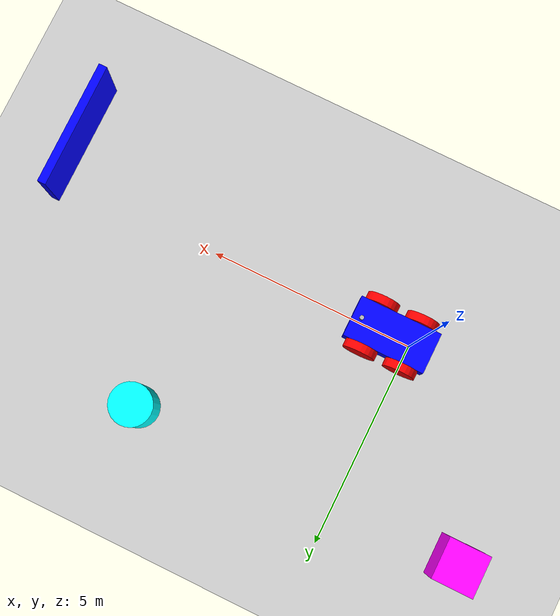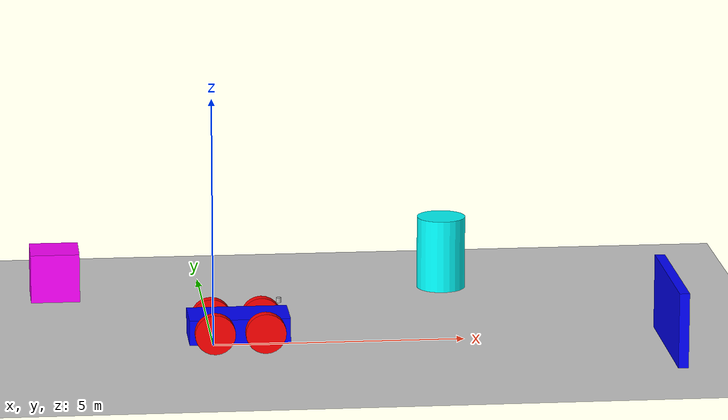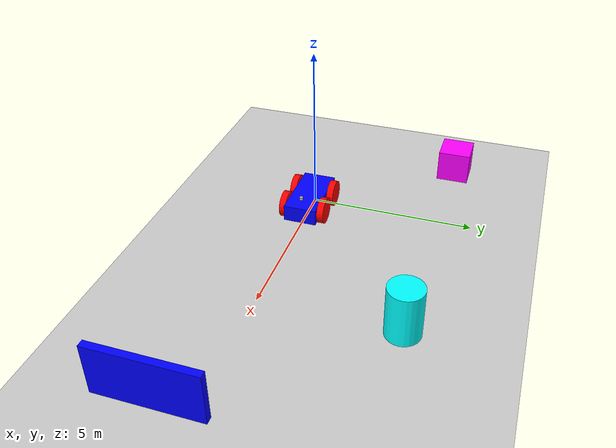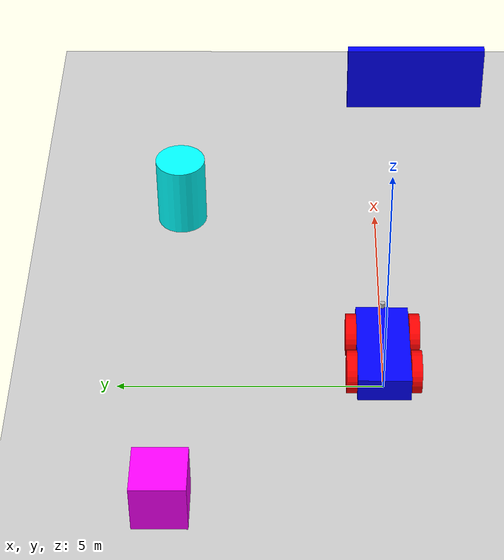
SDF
<?xml version="1.0" ?>
<sdf version="1.10">
    <world name="car_world">
        <physics name="1ms" type="ignored">
            <max_step_size>0.001</max_step_size>
            <real_time_factor>1.0</real_time_factor>
        </physics>
        <plugin
            filename="gz-sim-physics-system"
            name="gz::sim::systems::Physics">
        </plugin>
        <plugin
            filename="gz-sim-user-commands-system"
            name="gz::sim::systems::UserCommands">
        </plugin>
        <plugin
            filename="gz-sim-scene-broadcaster-system"
            name="gz::sim::systems::SceneBroadcaster">
        </plugin>

        <light type="directional" name="sun">
            <cast_shadows>true</cast_shadows>
            <pose>0 0 10 0 0 0</pose>
            <diffuse>0.8 0.8 0.8 1</diffuse>
            <specular>0.2 0.2 0.2 1</specular>
            <attenuation>
                <range>1000</range>
                <constant>0.9</constant>
                <linear>0.01</linear>
                <quadratic>0.001</quadratic>
            </attenuation>
            <direction>-0.5 0.1 -0.9</direction>
        </light>

        <model name="ground_plane">
            <static>true</static>
            <link name="link">
                <collision name="collision">
                <geometry>
                    <plane>
                    <normal>0 0 1</normal>
                    </plane>
                </geometry>
                </collision>
                <visual name="visual">
                <geometry>
                    <plane>
                    <normal>0 0 1</normal>
                    <size>100 100</size>
                    </plane>
                </geometry>
                <material>
                    <ambient>0.8 0.8 0.8 1</ambient>
                    <diffuse>0.8 0.8 0.8 1</diffuse>
                    <specular>0.8 0.8 0.8 1</specular>
                </material>
                </visual>
            </link>
        </model>
        <model name='vehicle_blue' canonical_link='chassis'>
            <pose relative_to='world'>0 0 0 0 0 0</pose>

            <link name='chassis'>
                <pose relative_to='__model__'>0.5 0 0.4 0 0 0</pose>
                <inertial> <!--inertial properties of the link mass, inertia matix-->
                    <mass>1.14395</mass>
                    <inertia>
                        <ixx>0.095329</ixx>
                        <ixy>0</ixy>
                        <ixz>0</ixz>
                        <iyy>0.381317</iyy>
                        <iyz>0</iyz>
                        <izz>0.4766 46</izz>
                    </inertia>
                </inertial>
                <visual name='visual'>
                    <geometry>
                        <box>
                            <size>2.0 1.0 0.5</size>
                        </box>
                    </geometry>
                    <!--let's add color to our link-->
                    <material>
                        <ambient>0.0 0.0 1.0 1</ambient>
                        <diffuse>0.0 0.0 1.0 1</diffuse>
                        <specular>0.0 0.0 1.0 1</specular>
                    </material>
                </visual>
                <collision name='collision'>
                    <geometry>
                        <box>
                            <size>2.0 1.0 0.5</size>
                        </box>
                    </geometry>
                </collision>
            </link>
            <link name='left_wheel'>
                <pose relative_to="chassis">-0.5 0.6 0 -1.5707 0 0</pose>
                <inertial>
                    <mass>1</mass>
                    <inertia>
                        <ixx>0.043333</ixx>
                        <ixy>0</ixy>
                        <ixz>0</ixz>
                        <iyy>0.043333</iyy>
                        <iyz>0</iyz>
                        <izz>0.08</izz>
                    </inertia>
                </inertial>
                    <visual name='visual'>
                        <geometry>
                            <cylinder>
                                <radius>0.4</radius>
                                <length>0.2</length>
                            </cylinder>
                        </geometry>
                        <material>
                            <ambient>1.0 0.0 0.0 1</ambient>
                            <diffuse>1.0 0.0 0.0 1</diffuse>
                            <specular>1.0 0.0 0.0 1</specular>
                        </material>
                    </visual>
                    <collision name='collision'>
                        <geometry>
                            <cylinder>
                                <radius>0.4</radius>
                                <length>0.2</length>
                            </cylinder>
                        </geometry>
                    </collision>
                </link>

                <!--The same as left wheel but with different position-->
                <link name='right_wheel'>
                    <pose relative_to="chassis">-0.5 -0.6 0 -1.5707 0 0</pose> <!--angles are in radian-->
                    <inertial>
                        <mass>1</mass>
                        <inertia>
                            <ixx>0.043333</ixx>
                            <ixy>0</ixy>
                            <ixz>0</ixz>
                            <iyy>0.043333</iyy>
                            <iyz>0</iyz>
                            <izz>0.08</izz>
                        </inertia>
                    </inertial>
                    <visual name='visual'>
                        <geometry>
                            <cylinder>
                                <radius>0.4</radius>
                                <length>0.2</length>
                            </cylinder>
                        </geometry>
                        <material>
                            <ambient>1.0 0.0 0.0 1</ambient>
                            <diffuse>1.0 0.0 0.0 1</diffuse>
                            <specular>1.0 0.0 0.0 1</specular>
                        </material>
                    </visual>
                    <collision name='collision'>
                        <geometry>
                            <cylinder>
                                <radius>0.4</radius>
                                <length>0.2</length>
                            </cylinder>
                        </geometry>
                    </collision>
                </link>

                <link name='front_left_wheel'>
                <pose relative_to="chassis">0.5 0.6 0 -1.5707 0 0</pose>
                <inertial>
                    <mass>1</mass>
                    <inertia>
                        <ixx>0.043333</ixx>
                        <ixy>0</ixy>
                        <ixz>0</ixz>
                        <iyy>0.043333</iyy>
                        <iyz>0</iyz>
                        <izz>0.08</izz>
                    </inertia>
                </inertial>
                    <visual name='visual'>
                        <geometry>
                            <cylinder>
                                <radius>0.4</radius>
                                <length>0.2</length>
                            </cylinder>
                        </geometry>
                        <material>
                            <ambient>1.0 0.0 0.0 1</ambient>
                            <diffuse>1.0 0.0 0.0 1</diffuse>
                            <specular>1.0 0.0 0.0 1</specular>
                        </material>
                    </visual>
                    <collision name='collision'>
                        <geometry>
                            <cylinder>
                                <radius>0.4</radius>
                                <length>0.2</length>
                            </cylinder>
                        </geometry>
                    </collision>
                </link>

                <!--The same as left wheel but with different position-->
                <link name='front_right_wheel'>
                    <pose relative_to="chassis">0.5 -0.6 0 -1.5707 0 0</pose> <!--angles are in radian-->
                    <inertial>
                        <mass>1</mass>
                        <inertia>
                            <ixx>0.043333</ixx>
                            <ixy>0</ixy>
                            <ixz>0</ixz>
                            <iyy>0.043333</iyy>
                            <iyz>0</iyz>
                            <izz>0.08</izz>
                        </inertia>
                    </inertial>
                    <visual name='visual'>
                        <geometry>
                            <cylinder>
                                <radius>0.4</radius>
                                <length>0.2</length>
                            </cylinder>
                        </geometry>
                        <material>
                            <ambient>1.0 0.0 0.0 1</ambient>
                            <diffuse>1.0 0.0 0.0 1</diffuse>
                            <specular>1.0 0.0 0.0 1</specular>
                        </material>
                    </visual>
                    <collision name='collision'>
                        <geometry>
                            <cylinder>
                                <radius>0.4</radius>
                                <length>0.2</length>
                            </cylinder>
                        </geometry>
                    </collision>
                </link>

                <joint name='left_wheel_joint' type='revolute'>
                    <pose relative_to='left_wheel'/>
                    <parent>chassis</parent>
                    <child>left_wheel</child>
                    <axis>
                    <xyz expressed_in='__model__'>0 1 0</xyz> <!--can be defined as any frame or even arbitrary frames-->
                    <limit>
                        <lower>-1.79769e+308</lower>    <!--negative infinity-->
                        <upper>1.79769e+308</upper>     <!--positive infinity-->
                    </limit>
                </axis>
            </joint>

            <joint name='right_wheel_joint' type='revolute'>
                    <pose relative_to='right_wheel'/>
                    <parent>chassis</parent>
                    <child>right_wheel</child>
                    <axis>
                    <xyz expressed_in='__model__'>0 1 0</xyz> <!--can be defined as any frame or even arbitrary frames-->
                    <limit>
                        <lower>-1.79769e+308</lower>    <!--negative infinity-->
                        <upper>1.79769e+308</upper>     <!--positive infinity-->
                    </limit>
                </axis>
            </joint>

            <joint name='front_left_wheel_joint' type='revolute'>
                    <pose relative_to='front_left_wheel'/>
                    <parent>chassis</parent>
                    <child>front_left_wheel</child>
                    <axis>
                    <xyz expressed_in='__model__'>0 1 0</xyz> <!--can be defined as any frame or even arbitrary frames-->
                    <limit>
                        <lower>-1.79769e+308</lower>    <!--negative infinity-->
                        <upper>1.79769e+308</upper>     <!--positive infinity-->
                    </limit>
                </axis>
            </joint>

            <joint name='front_right_wheel_joint' type='revolute'>
                    <pose relative_to='front_right_wheel'/>
                    <parent>chassis</parent>
                    <child>front_right_wheel</child>
                    <axis>
                    <xyz expressed_in='__model__'>0 1 0</xyz> <!--can be defined as any frame or even arbitrary frames-->
                    <limit>
                        <lower>-1.79769e+308</lower>    <!--negative infinity-->
                        <upper>1.79769e+308</upper>     <!--positive infinity-->
                    </limit>
                </axis>
            </joint>

            <plugin
                filename="gz-sim-diff-drive-system"
                name="gz::sim::systems::DiffDrive">
                <!-- For 4-wheel drive, list both front and rear joints -->
                <left_joint>front_left_wheel_joint</left_joint>
                <left_joint>left_wheel_joint</left_joint>
                <right_joint>front_right_wheel_joint</right_joint>
                <right_joint>right_wheel_joint</right_joint>
                <wheel_separation>1.2</wheel_separation>
                <wheel_radius>0.4</wheel_radius>
                <odom_publish_frequency>1</odom_publish_frequency>
                <topic>cmd_vel</topic>
            </plugin>
            <link name='lidar_link'>
                <pose relative_to='chassis'>0.8 0 0.5 0 0 0</pose>
                <inertial>
                    <mass>0.1</mass>
                    <inertia>
                        <ixx>0.000166667</ixx>
                        <iyy>0.000166667</iyy>
                        <izz>0.000166667</izz>
                    </inertia>
                </inertial>
                <visual name='visual'>
                    <geometry>
                        <cylinder>
                            <radius>0.05</radius>
                            <length>0.1</length>
                        </cylinder>
                    </geometry>
                </visual>
                <sensor name='gpu_lidar' type='gpu_lidar'>
                    <topic>lidar</topic>
                    <update_rate>10</update_rate>
                    <lidar>
                        <scan>
                            <horizontal>
                                <samples>640</samples>
                                <resolution>1</resolution>
                                <min_angle>-1.396263</min_angle>
                                <max_angle>1.396263</max_angle>
                            </horizontal>
                        </scan>
                        <range>
                            <min>0.08</min>
                            <max>10.0</max>
                        </range>
                    </lidar>
                    <visualize>true</visualize>
                </sensor>
            </link>

            <joint name='lidar_joint' type='fixed'>
                <parent>chassis</parent>
                <child>lidar_link</child>
            </joint>

        </model>
        <model name='wall'>
            <static>true</static>
            <pose relative_to='world'>9 -1 0.75 0 0 0</pose>
            <link name='link'>
                <visual name='visual'>
                    <geometry>
                        <box>
                            <size>0.2 3.0 1.5</size>
                        </box>
                    </geometry>
                    <material>
                        <ambient>0.0 0.0 1.0 1</ambient>
                        <diffuse>0.0 0.0 1.0 1</diffuse>
                        <specular>0.0 0.0 1.0 1</specular>
                    </material>
                </visual>

                <collision name='collision'>
                    <geometry>
                        <box>
                            <size>0.2 3.0 1.5</size>
                        </box>
                    </geometry>
                </collision>
            </link>
        </model>

        <model name='box_object'>
            <static>true</static>
            <pose relative_to='world'>-3 4 0.5 0 0 0</pose>
            <link name='link'>
                <visual name='visual'>
                    <geometry>
                        <box>
                            <size>1 1 1</size>
                        </box>
                    </geometry>
                    <material>
                        <ambient>1.0 0.0 1.0 1</ambient>
                        <diffuse>1.0 0.0 1.0 1</diffuse>
                        <specular>1.0 0.0 1.0 1</specular>
                    </material>
                </visual>

                <collision name='collision'>
                    <geometry>
                        <box>
                            <size>1 1 1</size>
                        </box>
                    </geometry>
                </collision>
            </link>
        </model>

        <model name='cylinder_object'>
            <static>true</static>
            <pose relative_to='world'>5 4 0.75 0 0 0</pose>
            <link name='link'>
                <visual name='visual'>
                    <geometry>
                        <cylinder>
                            <radius>0.5</radius>
                            <length>1.5</length>
                        </cylinder>
                    </geometry>
                    <material>
                        <ambient>0.0 1.0 1.0 1</ambient>
                        <diffuse>0.0 1.0 1.0 1</diffuse>
                        <specular>0.0 1.0 1.0 1</specular>
                    </material>
                </visual>

                <collision name='collision'>
                    <geometry>
                        <cylinder>
                            <radius>0.5</radius>
                            <length>1.5</length>
                        </cylinder>
                    </geometry>
                </collision>
            </link>
        </model>

        <!-- Moving Forward-->
        <plugin filename="gz-sim-triggered-publisher-system"
                name="gz::sim::systems::TriggeredPublisher">
            <input type="gz.msgs.Int32" topic="/keyboard/keypress">
                <match field="data">16777235</match>
            </input>
            <output type="gz.msgs.Twist" topic="/cmd_vel">
                linear: {x: 0.5}, angular: {z: 0.0}
            </output>
        </plugin>

        <!-- Moving Backward-->
        <plugin filename="gz-sim-triggered-publisher-system"
                name="gz::sim::systems::TriggeredPublisher">
            <input type="gz.msgs.Int32" topic="/keyboard/keypress">
                <match field="data">16777237</match>
            </input>
            <output type="gz.msgs.Twist" topic="/cmd_vel">
                linear: {x: -0.5}, angular: {z: 0.0}
            </output>
        </plugin>

        <!-- Moving Left-->
        <plugin filename="gz-sim-triggered-publisher-system"
                name="gz::sim::systems::TriggeredPublisher">
            <input type="gz.msgs.Int32" topic="/keyboard/keypress">
                <match field="data">16777234</match>
            </input>
            <output type="gz.msgs.Twist" topic="/cmd_vel">
                linear: {x: 0.0}, angular: {z: 0.5}
            </output>
        </plugin>

        <!-- Moving Right-->
        <plugin filename="gz-sim-triggered-publisher-system"
                name="gz::sim::systems::TriggeredPublisher">
            <input type="gz.msgs.Int32" topic="/keyboard/keypress">
                <match field="data">16777236</match>
            </input>
            <output type="gz.msgs.Twist" topic="/cmd_vel">
                linear: {x: 0.0}, angular: {z: -0.5}
            </output>
        </plugin>

        <plugin filename="gz-sim-sensors-system"
                name="gz::sim::systems::Sensors">
            <render_engine>ogre2</render_engine>
        </plugin>
    </world>
</sdf>
